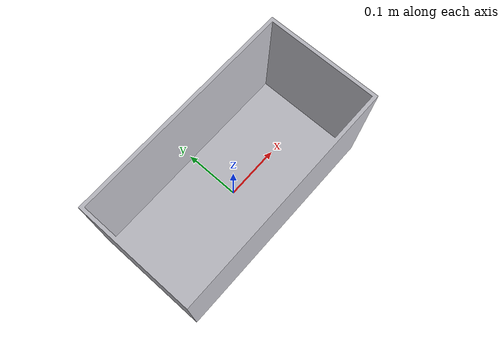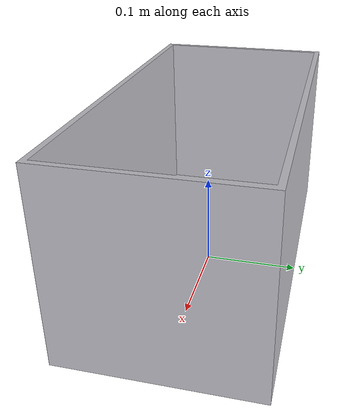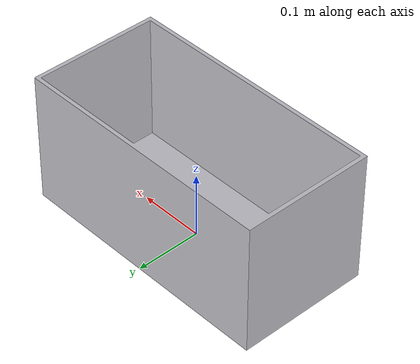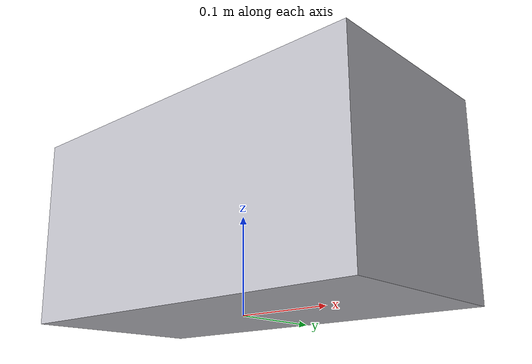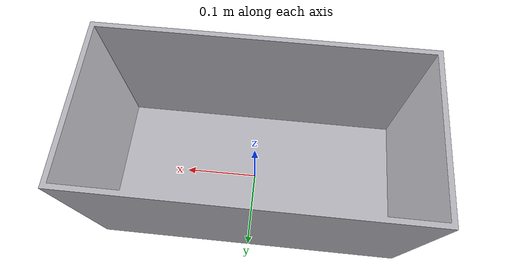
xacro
<?xml version="1.0" ?>
<robot name="box" xmlns:xacro="http://www.ros.org/wiki/xacro">

<xacro:include filename="$(find box_description)/urdf/materials.xacro" />
<xacro:include filename="$(find box_description)/urdf/box.trans" />
<xacro:include filename="$(find box_description)/urdf/box.gazebo" />
<link name="base_link">
  <inertial>
    <origin xyz="-7.870733179058506e-17 1.9676832947646264e-17 0.07703811205150851" rpy="0 0 0"/>
    <mass value="14.513582400000027"/>
    <inertia ixx="0.153091" iyy="0.342661" izz="0.372531" ixy="0.0" iyz="0.0" ixz="0.0"/>
  </inertial>
  <visual>
    <origin xyz="0 0 0" rpy="0 0 0"/>
    <geometry>
      <mesh filename="file://$(find box_description)/meshes/base_link.stl" scale="0.001 0.001 0.001"/>
    </geometry>
    <material name="silver"/>
  </visual>
  <collision>
    <origin xyz="0 0 0" rpy="0 0 0"/>
    <geometry>
      <mesh filename="file://$(find box_description)/meshes/base_link.stl" scale="0.001 0.001 0.001"/>
    </geometry>
  </collision>
</link>

</robot>

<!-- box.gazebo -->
<robot name="box" xmlns:xacro="http://www.ros.org/wiki/xacro" >

<xacro:property name="body_color" value="Gazebo/Silver" />

<gazebo>
  <plugin name="control" filename="libgazebo_ros_control.so"/>
</gazebo>
<gazebo reference="base_link">
  <material>${body_color}</material>
  <mu1>0.2</mu1>
  <mu2>0.2</mu2>
  <self_collide>true</self_collide>
  <gravity>true</gravity>
</gazebo>

</robot>
